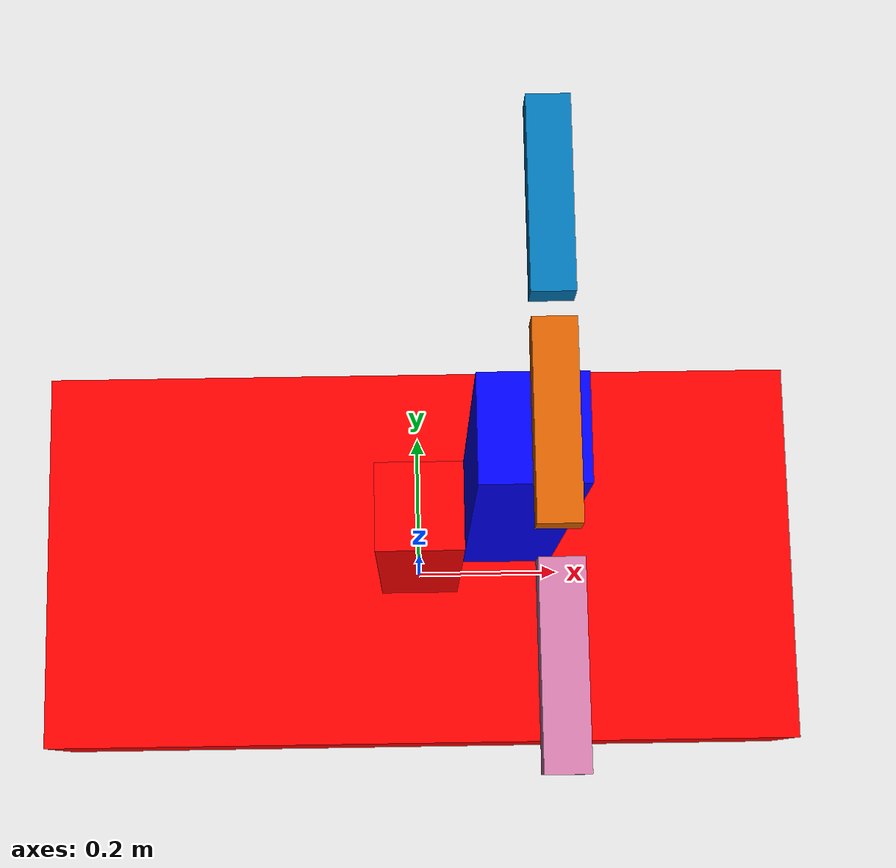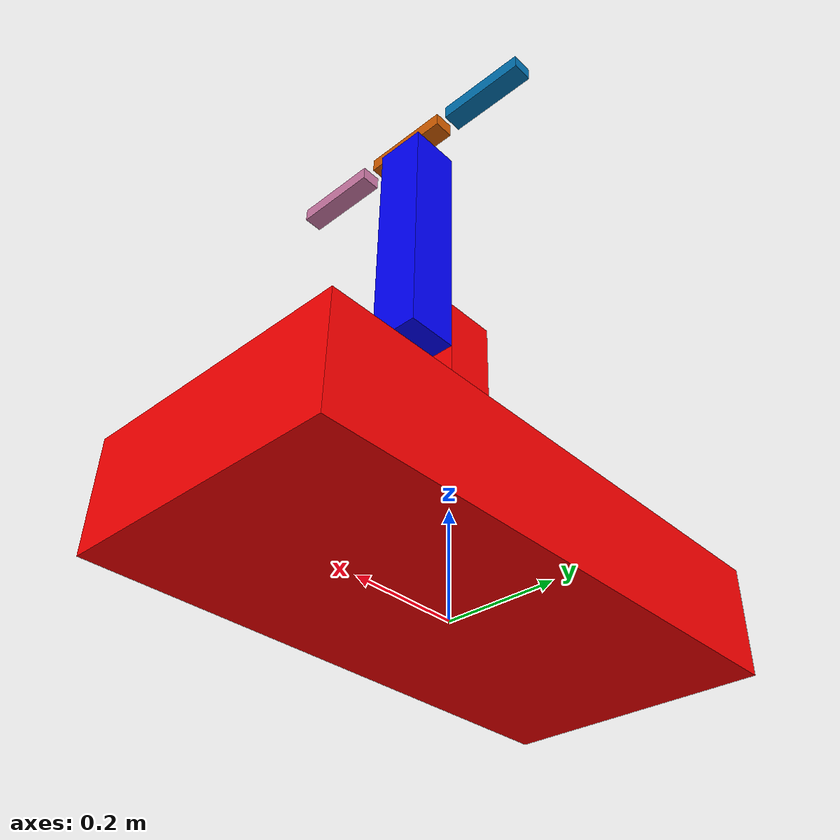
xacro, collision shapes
<?xml version="1.0"?>
<!-- Revolute-Revolute Manipulator -->
<robot name="cart_robot" xmlns:xacro="http://www.ros.org/wiki/xacro">

  <!-- Constants for robot dimensions -->
  <xacro:property name="mass" value="500" /> <!-- arbitrary value for mass -->
  <xacro:property name="horizontal" value="1" /> <!-- Square dimensions (widthxwidth) of beams -->
  <xacro:property name="vertical" value="0.5" /> <!-- Square dimensions (widthxwidth) of beams -->
  <xacro:property name="width" value="0.1" /> <!-- Square dimensions (widthxwidth) of beams -->
  <xacro:property name="height1" value="0.2" /> <!-- Link 1 -->
  <xacro:property name="height2" value="0.4" /> <!-- Link 2 -->
  <xacro:property name="height3" value="0.5" /> <!-- Link 3 -->
  <xacro:property name="axel_offset" value="0.05" /> <!-- Space btw top of beam and the each joint -->

  <!-- Import all Gazebo-customization elements, including Gazebo colors -->
  <xacro:include filename="$(find cart_robot_description)/urdf/cart_robot.gazebo" />
  <!-- Import Rviz colors -->
  <xacro:include filename="$(find cart_robot_description)/urdf/config.xacro" />

  <xacro:include filename="$(find cart_robot_description)/urdf/xtion.xacro" />

  <link name="base_link">
  </link>

  <joint name="base_fixed" type="fixed">
    <origin xyz="0 0 0" rpy="0 0 0"/>
    <parent link="base_link"/>
    <child link="cart_link"/>
  </joint>

  <!-- Cart Link -->
  <link name="cart_link">
    <collision>
      <origin xyz="0 0 ${height1/2}" rpy="0 0 0"/>
      <geometry>
	<box size="${horizontal} ${vertical} ${height1}"/>
      </geometry>
    </collision>

    <visual>
      <origin xyz="0 0 ${height1/2}" rpy="0 0 0"/>
      <geometry>
	<box size="${horizontal} ${vertical} ${height1}"/>
      </geometry>
      <material name="red"/>
    </visual>

    <inertial>
      <origin xyz="0 0 ${height1/2}" rpy="0 0 0"/>
      <mass value="${mass * horizontal * vertical * height1}"/>
      <inertia
	  ixx="${mass * horizontal * vertical * height1 / 12.0 * (vertical*vertical + height1*height1)}" ixy="0.0" ixz="0.0"
	  iyy="${mass * horizontal * vertical * height1 / 12.0 * (height1*height1 + horizontal*horizontal)}" iyz="0.0"
	  izz="${mass * horizontal * vertical * height1 / 12.0 * (horizontal*horizontal + vertical*vertical)}"/>
    </inertial>
  </link>

  <joint name="joint0" type="fixed">
    <parent link="cart_link"/>
    <child link="attachment_link"/>
    <origin xyz="0 0 ${height1}" rpy="0 0 0"/>
    <axis xyz="0 0 1"/>
  </joint>

  <!-- Attachment Link -->
  <link name="attachment_link">
    <collision>
      <origin xyz="0 0 ${height2/2}" rpy="0 0 0"/>
      <geometry>
	<box size="${width} ${width} ${height2}"/>
      </geometry>
    </collision>

    <visual>
      <origin xyz="0 0 ${height2/2}" rpy="0 0 0"/>
      <geometry>
	<box size="${width} ${width} ${height2}"/>
      </geometry>
      <material name="red"/>
    </visual>

    <inertial>
      <origin xyz="0 0 ${height2/2}" rpy="0 0 0"/>
      <mass value="${mass * width * width * height2}"/>
      <inertia
	  ixx="${mass * width * width * height2 / 12.0 * (width*width + height2*height2)}" ixy="0.0" ixz="0.0"
	  iyy="${mass * width * width * height2 / 12.0 * (height2*height2 + width*width)}" iyz="0.0"
	  izz="${mass * width * width * height2 / 12.0 * (width*width + width*width)}"/>
    </inertial>
  </link>

  <joint name="joint1" type="revolute">
    <parent link="attachment_link"/>
    <child link="camera_mount_link"/>
    <origin xyz="${width} 0 ${height2 - axel_offset}" rpy="0 0 0"/>
    <axis xyz="1 0 0"/>
    <limit effort="60.0" lower="${-M_PI * 1/6}" upper="${M_PI * 1/6}" velocity="0.45"/>
    <dynamics damping="0.7"/>
  </joint>

  <!-- Camera Mount Link -->
  <link name="camera_mount_link">
    <collision>
      <origin xyz="0 0 ${height3/2 - axel_offset}" rpy="0 0 0"/>
      <geometry>
	<box size="${width} ${width} ${height3}"/>
      </geometry>
    </collision>

    <visual>
      <origin xyz="0 0 ${height3/2 - axel_offset}" rpy="0 0 0"/>
      <geometry>
	<box size="${width} ${width} ${height3}"/>
      </geometry>
      <material name="blue"/>
    </visual>

    <inertial>
      <origin xyz="0 0 ${height3/2 - axel_offset}" rpy="0 0 0"/>
      <mass value="${mass * width * width * height3}"/>
      <inertia
	  ixx="${mass * width * width * height3 / 12.0 * (width*width + height3*height3)}" ixy="0.0" ixz="0.0"
	  iyy="${mass * width * width * height3 / 12.0 * (height3*height3 + width*width)}" iyz="0.0"
	  izz="${mass * width * width * height3 / 12.0 * (width*width + width*width)}"/>
    </inertial>
  </link>

  <transmission name="tran1">
    <type>transmission_interface/SimpleTransmission</type>
    <joint name="joint1">
      <hardwareInterface>hardware_interface/EffortJointInterface</hardwareInterface>
    </joint>
    <actuator name="motor1">
      <hardwareInterface>hardware_interface/EffortJointInterface</hardwareInterface>
      <mechanicalReduction>1</mechanicalReduction>
    </actuator>
  </transmission>

  <!-- camera1 -->
  <xacro:xtion xyz="0.0074361 0.105 ${0.01875 + height3 - axel_offset}" rpy="0 0 0" parent="camera_mount_link" id="1" link_xyz="0.01 0.097 0.0"/>

  <!-- camera2 -->
  <xacro:xtion xyz="0.0074361 0 ${0.01875 + height3 - axel_offset}" rpy="0 0 0" parent="camera_mount_link" id="2" link_xyz="0.01 0.0 0.0"/>

  <!-- camera3 -->
  <xacro:xtion xyz="0.0074361 -0.105 ${0.01875 + height3 - axel_offset}" rpy="0 0 0" parent="camera_mount_link" id="3" link_xyz="0.01 -0.103 0.0"/>

</robot>

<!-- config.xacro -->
<robot name="config" xmlns:xacro="http://www.ros.org/wiki/xacro">
  <!-- constants -->
  <xacro:property name="M_PI" value="3.1415926535897931"/>

  <!-- materials -->
  <material name="black">
    <color rgba="${0/255} ${0/255} ${0/255} 1.0"/>
  </material>

  <material name="red">
    <color rgba="${255/255} ${0/255} ${0/255} 1.0"/>
  </material>

  <material name="blue">
    <color rgba="${0/255} ${0/255} ${255/255} 1.0"/>
  </material>

  <material name="grey">
    <color rgba="${60/255} ${60/255} ${60/255} 1.0"/>
  </material>

  <material name="orange">
    <color rgba="${255/255} ${140/255} ${0/255} 1.0"/>
  </material>

  <material name="maroon">
    <color rgba="${128/255} ${0/255} ${0/255} 1.0"/>
  </material>

  <material name="silver">
    <color rgba="${192/255} ${192/255} ${192/255} 1.0"/>
  </material>

  <!-- default inertia -->
  <xacro:macro name="default_inertia">
    <inertia
        ixx="0.005" ixy="0.0" ixz="0.0"
        iyy="0.005" iyz="0.0"
        izz="0.005"/>
  </xacro:macro>
</robot>

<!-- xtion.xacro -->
<robot xmlns:xacro="http://www.ros.org/wiki/xacro" name="xtion">

  <xacro:macro name="xtion" params="xyz rpy parent id link_xyz">

    <!-- import gazebo definitions -->
    <xacro:include filename="$(find cart_robot_description)/urdf/xtion.gazebo" />
    <xacro:xtion_gazebo id="${id}"/>

    <joint name="camera${id}_joint" type="revolute">
      <axis xyz="0 0 1" />
      <origin xyz="${xyz}" rpy="${rpy}"/>
      <parent link="${parent}"/>
      <child link="camera${id}_link"/>
      <limit effort="8.0" lower="${-M_PI * 1/2}" upper="${M_PI * 1/2}" velocity="0.45"/>
    <dynamics damping="0.7"/>
    </joint>

    <link name="camera${id}_link">
      <collision>
        <origin xyz="${link_xyz}" rpy="0 0 0" />
        <geometry>
          <box size="0.04 0.18 0.03"/>
        </geometry>
      </collision>
      <visual>
        <origin xyz="${link_xyz}" rpy="${M_PI/2.0} 0 ${M_PI/2.0}" />
        <geometry>
          <mesh filename="package://cart_robot_description/mesh/asus_xtion_pro_live.dae" scale="0.001 0.001 0.001"/>
        </geometry>
      </visual>
      <inertial>
        <mass value="0.01" />
        <origin xyz="0 0 0" />
        <inertia ixx="0.001" ixy="0.0" ixz="0.0"
                 iyy="0.001" iyz="0.0" izz="0.001" />
      </inertial>
    </link>

    <transmission name="camera_tran${id}">
      <type>transmission_interface/SimpleTransmission</type>
      <joint name="camera${id}_joint">
        <hardwareInterface>hardware_interface/EffortJointInterface</hardwareInterface>
      </joint>
      <actuator name="camera_motor${id}">
        <hardwareInterface>hardware_interface/EffortJointInterface</hardwareInterface>
        <mechanicalReduction>1</mechanicalReduction>
      </actuator>
    </transmission>

  </xacro:macro>

</robot>
